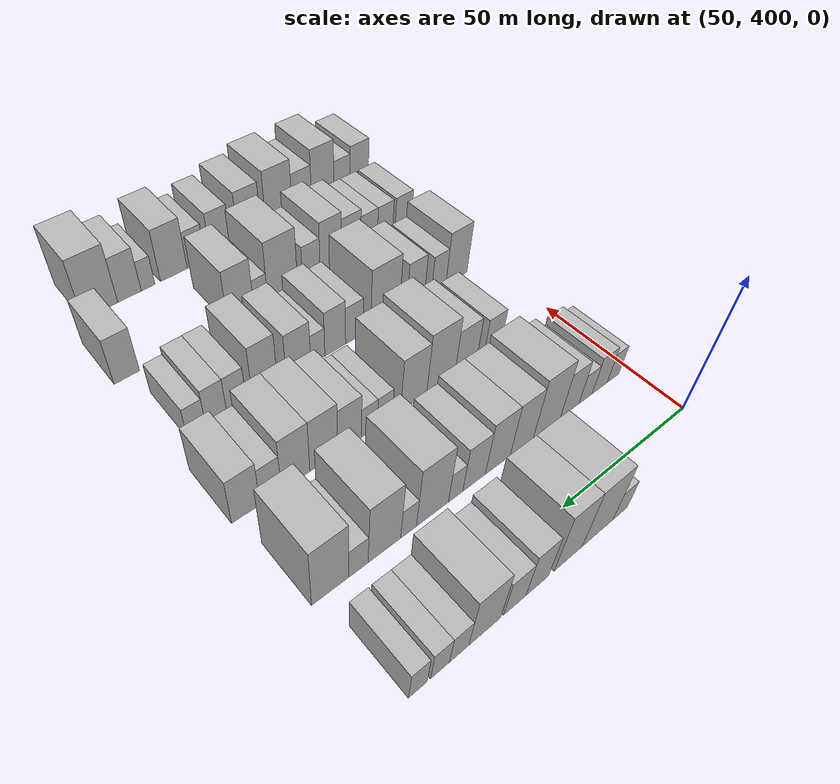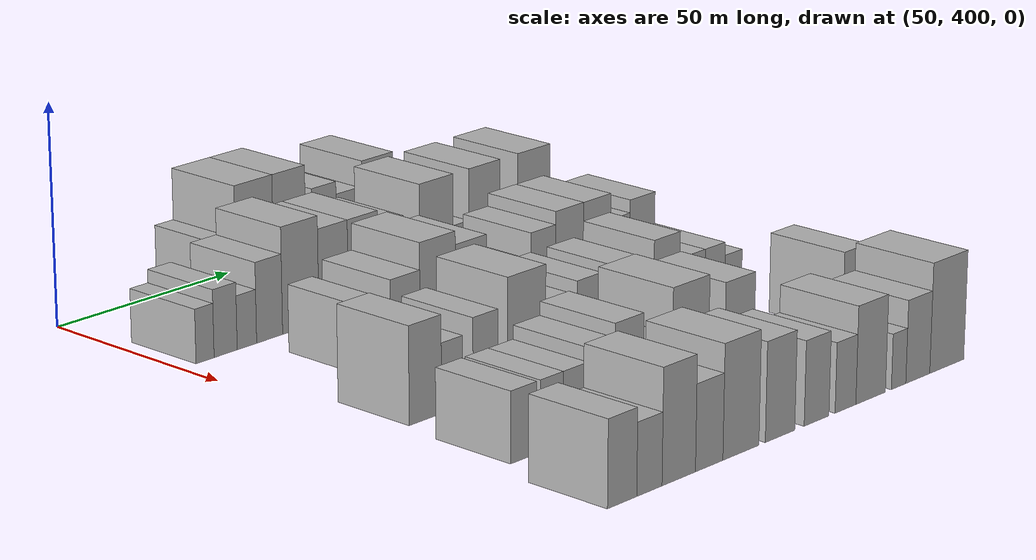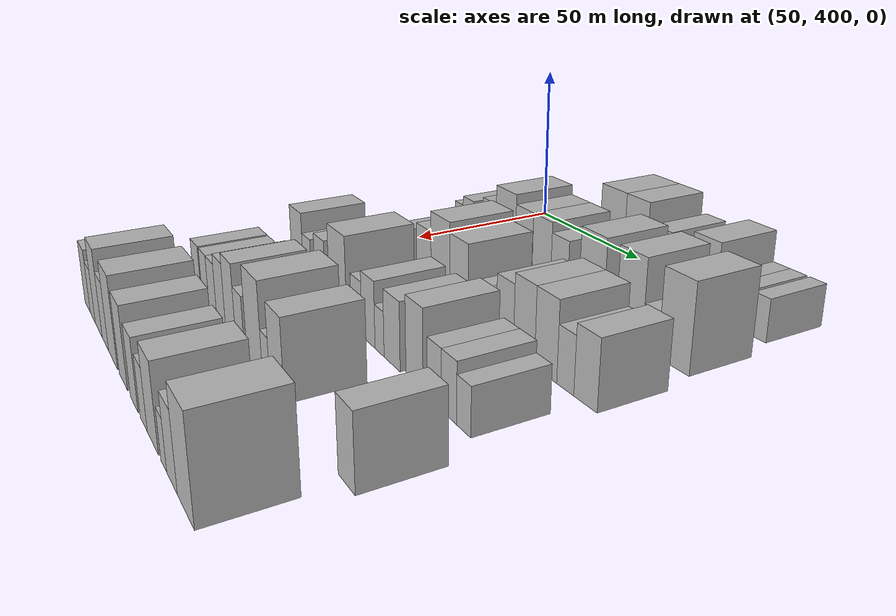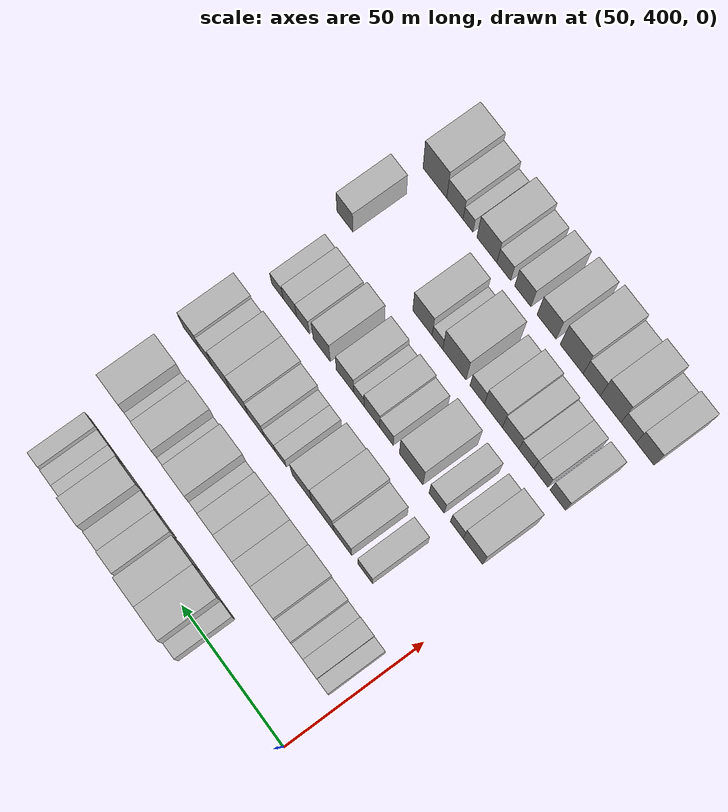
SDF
<sdf version="1.6">
 <world name="default">
  <model name="building_106">
   <static>1</static>
   <pose>50.0000 440.3252 0 0.000000 0.000000 0.000000</pose>
   <link name="link">
    <pose>0 0 6.00 0 0 0</pose>
    <collision name="collision"><geometry><box><size>20.0000 5.5348 12.0000</size></box></geometry></collision>
    <visual name="visual">
     <cast_shadows>0</cast_shadows>
     <geometry><box><size>20.0000 5.5348 12.0000</size></box></geometry>
     <material>
      <script>
       <uri>model://HANNAS_wall/materials/scripts</uri>
       <uri>model://HANNAS_wall/materials/textures</uri>
       <name>vrc/HANNAS_wall</name>
      </script>
     </material>
    </visual>
   </link>
  </model>
  <model name="building_107">
   <static>1</static>
   <pose>50.0000 448.8500 0 0.000000 0.000000 0.000000</pose>
   <link name="link">
    <pose>0 0 12.00 0 0 0</pose>
    <collision name="collision"><geometry><box><size>20.0000 11.5148 24.0000</size></box></geometry></collision>
    <visual name="visual">
     <cast_shadows>0</cast_shadows>
     <geometry><box><size>20.0000 11.5148 24.0000</size></box></geometry>
     <material>
      <script>
       <uri>model://HANNAS_wall/materials/scripts</uri>
       <uri>model://HANNAS_wall/materials/textures</uri>
       <name>vrc/HANNAS_wall</name>
      </script>
     </material>
    </visual>
   </link>
  </model>
  <model name="building_108">
   <static>1</static>
   <pose>50.0000 459.6433 0 0.000000 0.000000 0.000000</pose>
   <link name="link">
    <pose>0 0 12.00 0 0 0</pose>
    <collision name="collision"><geometry><box><size>20.0000 10.0718 24.0000</size></box></geometry></collision>
    <visual name="visual">
     <cast_shadows>0</cast_shadows>
     <geometry><box><size>20.0000 10.0718 24.0000</size></box></geometry>
     <material>
      <script>
       <uri>model://HANNAS_wall/materials/scripts</uri>
       <uri>model://HANNAS_wall/materials/textures</uri>
       <name>vrc/HANNAS_wall</name>
      </script>
     </material>
    </visual>
   </link>
  </model>
  <model name="building_109">
   <static>1</static>
   <pose>50.0000 470.5440 0 0.000000 0.000000 0.000000</pose>
   <link name="link">
    <pose>0 0 9.00 0 0 0</pose>
    <collision name="collision"><geometry><box><size>20.0000 7.7297 18.0000</size></box></geometry></collision>
    <visual name="visual">
     <cast_shadows>0</cast_shadows>
     <geometry><box><size>20.0000 7.7297 18.0000</size></box></geometry>
     <material>
      <script>
       <uri>model://HANNAS_wall/materials/scripts</uri>
       <uri>model://HANNAS_wall/materials/textures</uri>
       <name>vrc/HANNAS_wall</name>
      </script>
     </material>
    </visual>
   </link>
  </model>
  <model name="building_110">
   <static>1</static>
   <pose>50.0000 478.0715 0 0.000000 0.000000 0.000000</pose>
   <link name="link">
    <pose>0 0 7.50 0 0 0</pose>
    <collision name="collision"><geometry><box><size>20.0000 7.3253 15.0000</size></box></geometry></collision>
    <visual name="visual">
     <cast_shadows>0</cast_shadows>
     <geometry><box><size>20.0000 7.3253 15.0000</size></box></geometry>
     <material>
      <script>
       <uri>model://HANNAS_wall/materials/scripts</uri>
       <uri>model://HANNAS_wall/materials/textures</uri>
       <name>vrc/HANNAS_wall</name>
      </script>
     </material>
    </visual>
   </link>
  </model>
  <model name="building_111">
   <static>1</static>
   <pose>50.0000 487.7563 0 0.000000 0.000000 0.000000</pose>
   <link name="link">
    <pose>0 0 10.50 0 0 0</pose>
    <collision name="collision"><geometry><box><size>20.0000 10.0445 21.0000</size></box></geometry></collision>
    <visual name="visual">
     <cast_shadows>0</cast_shadows>
     <geometry><box><size>20.0000 10.0445 21.0000</size></box></geometry>
     <material>
      <script>
       <uri>model://HANNAS_wall/materials/scripts</uri>
       <uri>model://HANNAS_wall/materials/textures</uri>
       <name>vrc/HANNAS_wall</name>
      </script>
     </material>
    </visual>
   </link>
  </model>
  <model name="building_112">
   <static>1</static>
   <pose>50.0000 495.7075 0 0.000000 0.000000 0.000000</pose>
   <link name="link">
    <pose>0 0 6.00 0 0 0</pose>
    <collision name="collision"><geometry><box><size>20.0000 5.8578 12.0000</size></box></geometry></collision>
    <visual name="visual">
     <cast_shadows>0</cast_shadows>
     <geometry><box><size>20.0000 5.8578 12.0000</size></box></geometry>
     <material>
      <script>
       <uri>model://HANNAS_wall/materials/scripts</uri>
       <uri>model://HANNAS_wall/materials/textures</uri>
       <name>vrc/HANNAS_wall</name>
      </script>
     </material>
    </visual>
   </link>
  </model>
  <model name="building_113">
   <static>1</static>
   <pose>50.0000 501.4129 0 0.000000 0.000000 0.000000</pose>
   <link name="link">
    <pose>0 0 6.00 0 0 0</pose>
    <collision name="collision"><geometry><box><size>20.0000 5.5530 12.0000</size></box></geometry></collision>
    <visual name="visual">
     <cast_shadows>0</cast_shadows>
     <geometry><box><size>20.0000 5.5530 12.0000</size></box></geometry>
     <material>
      <script>
       <uri>model://HANNAS_wall/materials/scripts</uri>
       <uri>model://HANNAS_wall/materials/textures</uri>
       <name>vrc/HANNAS_wall</name>
      </script>
     </material>
    </visual>
   </link>
  </model>
  <model name="building_114">
   <static>1</static>
   <pose>50.0000 507.8551 0 0.000000 0.000000 0.000000</pose>
   <link name="link">
    <pose>0 0 6.00 0 0 0</pose>
    <collision name="collision"><geometry><box><size>20.0000 5.3314 12.0000</size></box></geometry></collision>
    <visual name="visual">
     <cast_shadows>0</cast_shadows>
     <geometry><box><size>20.0000 5.3314 12.0000</size></box></geometry>
     <material>
      <script>
       <uri>model://HANNAS_wall/materials/scripts</uri>
       <uri>model://HANNAS_wall/materials/textures</uri>
       <name>vrc/HANNAS_wall</name>
      </script>
     </material>
    </visual>
   </link>
  </model>
  <model name="building_211">
   <static>1</static>
   <pose>79.0000 406.6724 0 0.000000 0.000000 0.000000</pose>
   <link name="link">
    <pose>0 0 6.00 0 0 0</pose>
    <collision name="collision"><geometry><box><size>20.0000 5.1438 12.0000</size></box></geometry></collision>
    <visual name="visual">
     <cast_shadows>0</cast_shadows>
     <geometry><box><size>20.0000 5.1438 12.0000</size></box></geometry>
     <material>
      <script>
       <uri>model://HANNAS_wall/materials/scripts</uri>
       <uri>model://HANNAS_wall/materials/textures</uri>
       <name>vrc/HANNAS_wall</name>
      </script>
     </material>
    </visual>
   </link>
  </model>
  <model name="building_212">
   <static>1</static>
   <pose>79.0000 412.5616 0 0.000000 0.000000 0.000000</pose>
   <link name="link">
    <pose>0 0 7.50 0 0 0</pose>
    <collision name="collision"><geometry><box><size>20.0000 6.6344 15.0000</size></box></geometry></collision>
    <visual name="visual">
     <cast_shadows>0</cast_shadows>
     <geometry><box><size>20.0000 6.6344 15.0000</size></box></geometry>
     <material>
      <script>
       <uri>model://HANNAS_wall/materials/scripts</uri>
       <uri>model://HANNAS_wall/materials/textures</uri>
       <name>vrc/HANNAS_wall</name>
      </script>
     </material>
    </visual>
   </link>
  </model>
  <model name="building_213">
   <static>1</static>
   <pose>79.0000 418.7056 0 0.000000 0.000000 0.000000</pose>
   <link name="link">
    <pose>0 0 6.00 0 0 0</pose>
    <collision name="collision"><geometry><box><size>20.0000 5.6537 12.0000</size></box></geometry></collision>
    <visual name="visual">
     <cast_shadows>0</cast_shadows>
     <geometry><box><size>20.0000 5.6537 12.0000</size></box></geometry>
     <material>
      <script>
       <uri>model://HANNAS_wall/materials/scripts</uri>
       <uri>model://HANNAS_wall/materials/textures</uri>
       <name>vrc/HANNAS_wall</name>
      </script>
     </material>
    </visual>
   </link>
  </model>
  <model name="building_214">
   <static>1</static>
   <pose>79.0000 425.3550 0 0.000000 0.000000 0.000000</pose>
   <link name="link">
    <pose>0 0 9.00 0 0 0</pose>
    <collision name="collision"><geometry><box><size>20.0000 7.6452 18.0000</size></box></geometry></collision>
    <visual name="visual">
     <cast_shadows>0</cast_shadows>
     <geometry><box><size>20.0000 7.6452 18.0000</size></box></geometry>
     <material>
      <script>
       <uri>model://HANNAS_wall/materials/scripts</uri>
       <uri>model://HANNAS_wall/materials/textures</uri>
       <name>vrc/HANNAS_wall</name>
      </script>
     </material>
    </visual>
   </link>
  </model>
  <model name="building_215">
   <static>1</static>
   <pose>79.0000 434.6088 0 0.000000 0.000000 0.000000</pose>
   <link name="link">
    <pose>0 0 12.00 0 0 0</pose>
    <collision name="collision"><geometry><box><size>20.0000 10.8624 24.0000</size></box></geometry></collision>
    <visual name="visual">
     <cast_shadows>0</cast_shadows>
     <geometry><box><size>20.0000 10.8624 24.0000</size></box></geometry>
     <material>
      <script>
       <uri>model://HANNAS_wall/materials/scripts</uri>
       <uri>model://HANNAS_wall/materials/textures</uri>
       <name>vrc/HANNAS_wall</name>
      </script>
     </material>
    </visual>
   </link>
  </model>
  <model name="building_216">
   <static>1</static>
   <pose>79.0000 444.5128 0 0.000000 0.000000 0.000000</pose>
   <link name="link">
    <pose>0 0 10.50 0 0 0</pose>
    <collision name="collision"><geometry><box><size>20.0000 8.9455 21.0000</size></box></geometry></collision>
    <visual name="visual">
     <cast_shadows>0</cast_shadows>
     <geometry><box><size>20.0000 8.9455 21.0000</size></box></geometry>
     <material>
      <script>
       <uri>model://HANNAS_wall/materials/scripts</uri>
       <uri>model://HANNAS_wall/materials/textures</uri>
       <name>vrc/HANNAS_wall</name>
      </script>
     </material>
    </visual>
   </link>
  </model>
  <model name="building_217">
   <static>1</static>
   <pose>79.0000 453.6151 0 0.000000 0.000000 0.000000</pose>
   <link name="link">
    <pose>0 0 10.50 0 0 0</pose>
    <collision name="collision"><geometry><box><size>20.0000 9.2590 21.0000</size></box></geometry></collision>
    <visual name="visual">
     <cast_shadows>0</cast_shadows>
     <geometry><box><size>20.0000 9.2590 21.0000</size></box></geometry>
     <material>
      <script>
       <uri>model://HANNAS_wall/materials/scripts</uri>
       <uri>model://HANNAS_wall/materials/textures</uri>
       <name>vrc/HANNAS_wall</name>
      </script>
     </material>
    </visual>
   </link>
  </model>
  <model name="building_218">
   <static>1</static>
   <pose>79.0000 462.2756 0 0.000000 0.000000 0.000000</pose>
   <link name="link">
    <pose>0 0 9.00 0 0 0</pose>
    <collision name="collision"><geometry><box><size>20.0000 8.0622 18.0000</size></box></geometry></collision>
    <visual name="visual">
     <cast_shadows>0</cast_shadows>
     <geometry><box><size>20.0000 8.0622 18.0000</size></box></geometry>
     <material>
      <script>
       <uri>model://HANNAS_wall/materials/scripts</uri>
       <uri>model://HANNAS_wall/materials/textures</uri>
       <name>vrc/HANNAS_wall</name>
      </script>
     </material>
    </visual>
   </link>
  </model>
  <model name="building_219">
   <static>1</static>
   <pose>79.0000 468.8158 0 0.000000 0.000000 0.000000</pose>
   <link name="link">
    <pose>0 0 6.00 0 0 0</pose>
    <collision name="collision"><geometry><box><size>20.0000 5.0181 12.0000</size></box></geometry></collision>
    <visual name="visual">
     <cast_shadows>0</cast_shadows>
     <geometry><box><size>20.0000 5.0181 12.0000</size></box></geometry>
     <material>
      <script>
       <uri>model://HANNAS_wall/materials/scripts</uri>
       <uri>model://HANNAS_wall/materials/textures</uri>
       <name>vrc/HANNAS_wall</name>
      </script>
     </material>
    </visual>
   </link>
  </model>
  <model name="building_220">
   <static>1</static>
   <pose>79.0000 476.7236 0 0.000000 0.000000 0.000000</pose>
   <link name="link">
    <pose>0 0 12.00 0 0 0</pose>
    <collision name="collision"><geometry><box><size>20.0000 10.7975 24.0000</size></box></geometry></collision>
    <visual name="visual">
     <cast_shadows>0</cast_shadows>
     <geometry><box><size>20.0000 10.7975 24.0000</size></box></geometry>
     <material>
      <script>
       <uri>model://HANNAS_wall/materials/scripts</uri>
       <uri>model://HANNAS_wall/materials/textures</uri>
       <name>vrc/HANNAS_wall</name>
      </script>
     </material>
    </visual>
   </link>
  </model>
  <model name="building_221">
   <static>1</static>
   <pose>79.0000 484.6833 0 0.000000 0.000000 0.000000</pose>
   <link name="link">
    <pose>0 0 6.00 0 0 0</pose>
    <collision name="collision"><geometry><box><size>20.0000 5.1220 12.0000</size></box></geometry></collision>
    <visual name="visual">
     <cast_shadows>0</cast_shadows>
     <geometry><box><size>20.0000 5.1220 12.0000</size></box></geometry>
     <material>
      <script>
       <uri>model://HANNAS_wall/materials/scripts</uri>
       <uri>model://HANNAS_wall/materials/textures</uri>
       <name>vrc/HANNAS_wall</name>
      </script>
     </material>
    </visual>
   </link>
  </model>
  <model name="building_222">
   <static>1</static>
   <pose>79.0000 492.3899 0 0.000000 0.000000 0.000000</pose>
   <link name="link">
    <pose>0 0 12.00 0 0 0</pose>
    <collision name="collision"><geometry><box><size>20.0000 10.2912 24.0000</size></box></geometry></collision>
    <visual name="visual">
     <cast_shadows>0</cast_shadows>
     <geometry><box><size>20.0000 10.2912 24.0000</size></box></geometry>
     <material>
      <script>
       <uri>model://HANNAS_wall/materials/scripts</uri>
       <uri>model://HANNAS_wall/materials/textures</uri>
       <name>vrc/HANNAS_wall</name>
      </script>
     </material>
    </visual>
   </link>
  </model>
  <model name="building_223">
   <static>1</static>
   <pose>79.0000 500.4923 0 0.000000 0.000000 0.000000</pose>
   <link name="link">
    <pose>0 0 6.00 0 0 0</pose>
    <collision name="collision"><geometry><box><size>20.0000 5.9134 12.0000</size></box></geometry></collision>
    <visual name="visual">
     <cast_shadows>0</cast_shadows>
     <geometry><box><size>20.0000 5.9134 12.0000</size></box></geometry>
     <material>
      <script>
       <uri>model://HANNAS_wall/materials/scripts</uri>
       <uri>model://HANNAS_wall/materials/textures</uri>
       <name>vrc/HANNAS_wall</name>
      </script>
     </material>
    </visual>
   </link>
  </model>
  <model name="building_224">
   <static>1</static>
   <pose>79.0000 508.8662 0 0.000000 0.000000 0.000000</pose>
   <link name="link">
    <pose>0 0 12.00 0 0 0</pose>
    <collision name="collision"><geometry><box><size>20.0000 10.8345 24.0000</size></box></geometry></collision>
    <visual name="visual">
     <cast_shadows>0</cast_shadows>
     <geometry><box><size>20.0000 10.8345 24.0000</size></box></geometry>
     <material>
      <script>
       <uri>model://HANNAS_wall/materials/scripts</uri>
       <uri>model://HANNAS_wall/materials/textures</uri>
       <name>vrc/HANNAS_wall</name>
      </script>
     </material>
    </visual>
   </link>
  </model>
  <model name="building_329">
   <static>1</static>
   <pose>108.0000 425.8701 0 0.000000 0.000000 0.000000</pose>
   <link name="link">
    <pose>0 0 7.50 0 0 0</pose>
    <collision name="collision"><geometry><box><size>20.0000 7.1567 15.0000</size></box></geometry></collision>
    <visual name="visual">
     <cast_shadows>0</cast_shadows>
     <geometry><box><size>20.0000 7.1567 15.0000</size></box></geometry>
     <material>
      <script>
       <uri>model://HANNAS_wall/materials/scripts</uri>
       <uri>model://HANNAS_wall/materials/textures</uri>
       <name>vrc/HANNAS_wall</name>
      </script>
     </material>
    </visual>
   </link>
  </model>
  <model name="building_330">
   <static>1</static>
   <pose>108.0000 436.8398 0 0.000000 0.000000 0.000000</pose>
   <link name="link">
    <pose>0 0 9.00 0 0 0</pose>
    <collision name="collision"><geometry><box><size>20.0000 8.7826 18.0000</size></box></geometry></collision>
    <visual name="visual">
     <cast_shadows>0</cast_shadows>
     <geometry><box><size>20.0000 8.7826 18.0000</size></box></geometry>
     <material>
      <script>
       <uri>model://HANNAS_wall/materials/scripts</uri>
       <uri>model://HANNAS_wall/materials/textures</uri>
       <name>vrc/HANNAS_wall</name>
      </script>
     </material>
    </visual>
   </link>
  </model>
  <model name="building_331">
   <static>1</static>
   <pose>108.0000 446.6506 0 0.000000 0.000000 0.000000</pose>
   <link name="link">
    <pose>0 0 12.00 0 0 0</pose>
    <collision name="collision"><geometry><box><size>20.0000 10.8390 24.0000</size></box></geometry></collision>
    <visual name="visual">
     <cast_shadows>0</cast_shadows>
     <geometry><box><size>20.0000 10.8390 24.0000</size></box></geometry>
     <material>
      <script>
       <uri>model://HANNAS_wall/materials/scripts</uri>
       <uri>model://HANNAS_wall/materials/textures</uri>
       <name>vrc/HANNAS_wall</name>
      </script>
     </material>
    </visual>
   </link>
  </model>
  <model name="building_332">
   <static>1</static>
   <pose>108.0000 456.9176 0 0.000000 0.000000 0.000000</pose>
   <link name="link">
    <pose>0 0 10.50 0 0 0</pose>
    <collision name="collision"><geometry><box><size>20.0000 9.6951 21.0000</size></box></geometry></collision>
    <visual name="visual">
     <cast_shadows>0</cast_shadows>
     <geometry><box><size>20.0000 9.6951 21.0000</size></box></geometry>
     <material>
      <script>
       <uri>model://HANNAS_wall/materials/scripts</uri>
       <uri>model://HANNAS_wall/materials/textures</uri>
       <name>vrc/HANNAS_wall</name>
      </script>
     </material>
    </visual>
   </link>
  </model>
  <model name="building_333">
   <static>1</static>
   <pose>108.0000 467.4986 0 0.000000 0.000000 0.000000</pose>
   <link name="link">
    <pose>0 0 6.00 0 0 0</pose>
    <collision name="collision"><geometry><box><size>20.0000 5.4667 12.0000</size></box></geometry></collision>
    <visual name="visual">
     <cast_shadows>0</cast_shadows>
     <geometry><box><size>20.0000 5.4667 12.0000</size></box></geometry>
     <material>
      <script>
       <uri>model://HANNAS_wall/materials/scripts</uri>
       <uri>model://HANNAS_wall/materials/textures</uri>
       <name>vrc/HANNAS_wall</name>
      </script>
     </material>
    </visual>
   </link>
  </model>
  <model name="building_334">
   <static>1</static>
   <pose>108.0000 473.0381 0 0.000000 0.000000 0.000000</pose>
   <link name="link">
    <pose>0 0 6.00 0 0 0</pose>
    <collision name="collision"><geometry><box><size>20.0000 5.6122 12.0000</size></box></geometry></collision>
    <visual name="visual">
     <cast_shadows>0</cast_shadows>
     <geometry><box><size>20.0000 5.6122 12.0000</size></box></geometry>
     <material>
      <script>
       <uri>model://HANNAS_wall/materials/scripts</uri>
       <uri>model://HANNAS_wall/materials/textures</uri>
       <name>vrc/HANNAS_wall</name>
      </script>
     </material>
    </visual>
   </link>
  </model>
  <model name="building_335">
   <static>1</static>
   <pose>108.0000 479.8450 0 0.000000 0.000000 0.000000</pose>
   <link name="link">
    <pose>0 0 9.00 0 0 0</pose>
    <collision name="collision"><geometry><box><size>20.0000 8.0017 18.0000</size></box></geometry></collision>
    <visual name="visual">
     <cast_shadows>0</cast_shadows>
     <geometry><box><size>20.0000 8.0017 18.0000</size></box></geometry>
     <material>
      <script>
       <uri>model://HANNAS_wall/materials/scripts</uri>
       <uri>model://HANNAS_wall/materials/textures</uri>
       <name>vrc/HANNAS_wall</name>
      </script>
     </material>
    </visual>
   </link>
  </model>
  <model name="building_336">
   <static>1</static>
   <pose>108.0000 488.4275 0 0.000000 0.000000 0.000000</pose>
   <link name="link">
    <pose>0 0 10.50 0 0 0</pose>
    <collision name="collision"><geometry><box><size>20.0000 9.1633 21.0000</size></box></geometry></collision>
    <visual name="visual">
     <cast_shadows>0</cast_shadows>
     <geometry><box><size>20.0000 9.1633 21.0000</size></box></geometry>
     <material>
      <script>
       <uri>model://HANNAS_wall/materials/scripts</uri>
       <uri>model://HANNAS_wall/materials/textures</uri>
       <name>vrc/HANNAS_wall</name>
      </script>
     </material>
    </visual>
   </link>
  </model>
  <model name="building_337">
   <static>1</static>
   <pose>108.0000 497.5216 0 0.000000 0.000000 0.000000</pose>
   <link name="link">
    <pose>0 0 10.50 0 0 0</pose>
    <collision name="collision"><geometry><box><size>20.0000 9.0248 21.0000</size></box></geometry></collision>
    <visual name="visual">
     <cast_shadows>0</cast_shadows>
     <geometry><box><size>20.0000 9.0248 21.0000</size></box></geometry>
     <material>
      <script>
       <uri>model://HANNAS_wall/materials/scripts</uri>
       <uri>model://HANNAS_wall/materials/textures</uri>
       <name>vrc/HANNAS_wall</name>
      </script>
     </material>
    </visual>
   </link>
  </model>
  <model name="building_338">
   <static>1</static>
   <pose>108.0000 505.3039 0 0.000000 0.000000 0.000000</pose>
   <link name="link">
    <pose>0 0 7.50 0 0 0</pose>
    <collision name="collision"><geometry><box><size>20.0000 6.5399 15.0000</size></box></geometry></collision>
    <visual name="visual">
     <cast_shadows>0</cast_shadows>
     <geometry><box><size>20.0000 6.5399 15.0000</size></box></geometry>
     <material>
      <script>
       <uri>model://HANNAS_wall/materials/scripts</uri>
       <uri>model://HANNAS_wall/materials/textures</uri>
       <name>vrc/HANNAS_wall</name>
      </script>
     </material>
    </visual>
   </link>
  </model>
  <model name="building_339">
   <static>1</static>
   <pose>108.0000 512.8173 0 0.000000 0.000000 0.000000</pose>
   <link name="link">
    <pose>0 0 9.00 0 0 0</pose>
    <collision name="collision"><geometry><box><size>20.0000 8.4868 18.0000</size></box></geometry></collision>
    <visual name="visual">
     <cast_shadows>0</cast_shadows>
     <geometry><box><size>20.0000 8.4868 18.0000</size></box></geometry>
     <material>
      <script>
       <uri>model://HANNAS_wall/materials/scripts</uri>
       <uri>model://HANNAS_wall/materials/textures</uri>
       <name>vrc/HANNAS_wall</name>
      </script>
     </material>
    </visual>
   </link>
  </model>
  <model name="building_442">
   <static>1</static>
   <pose>137.0000 412.5299 0 0.000000 0.000000 0.000000</pose>
   <link name="link">
    <pose>0 0 10.50 0 0 0</pose>
    <collision name="collision"><geometry><box><size>20.0000 9.3238 21.0000</size></box></geometry></collision>
    <visual name="visual">
     <cast_shadows>0</cast_shadows>
     <geometry><box><size>20.0000 9.3238 21.0000</size></box></geometry>
     <material>
      <script>
       <uri>model://HANNAS_wall/materials/scripts</uri>
       <uri>model://HANNAS_wall/materials/textures</uri>
       <name>vrc/HANNAS_wall</name>
      </script>
     </material>
    </visual>
   </link>
  </model>
  <model name="building_443">
   <static>1</static>
   <pose>137.0000 420.3171 0 0.000000 0.000000 0.000000</pose>
   <link name="link">
    <pose>0 0 7.50 0 0 0</pose>
    <collision name="collision"><geometry><box><size>20.0000 6.2507 15.0000</size></box></geometry></collision>
    <visual name="visual">
     <cast_shadows>0</cast_shadows>
     <geometry><box><size>20.0000 6.2507 15.0000</size></box></geometry>
     <material>
      <script>
       <uri>model://HANNAS_wall/materials/scripts</uri>
       <uri>model://HANNAS_wall/materials/textures</uri>
       <name>vrc/HANNAS_wall</name>
      </script>
     </material>
    </visual>
   </link>
  </model>
  <model name="building_444">
   <static>1</static>
   <pose>137.0000 430.1366 0 0.000000 0.000000 0.000000</pose>
   <link name="link">
    <pose>0 0 9.00 0 0 0</pose>
    <collision name="collision"><geometry><box><size>20.0000 7.3885 18.0000</size></box></geometry></collision>
    <visual name="visual">
     <cast_shadows>0</cast_shadows>
     <geometry><box><size>20.0000 7.3885 18.0000</size></box></geometry>
     <material>
      <script>
       <uri>model://HANNAS_wall/materials/scripts</uri>
       <uri>model://HANNAS_wall/materials/textures</uri>
       <name>vrc/HANNAS_wall</name>
      </script>
     </material>
    </visual>
   </link>
  </model>
  <model name="building_445">
   <static>1</static>
   <pose>137.0000 442.5979 0 0.000000 0.000000 0.000000</pose>
   <link name="link">
    <pose>0 0 12.00 0 0 0</pose>
    <collision name="collision"><geometry><box><size>20.0000 11.5340 24.0000</size></box></geometry></collision>
    <visual name="visual">
     <cast_shadows>0</cast_shadows>
     <geometry><box><size>20.0000 11.5340 24.0000</size></box></geometry>
     <material>
      <script>
       <uri>model://HANNAS_wall/materials/scripts</uri>
       <uri>model://HANNAS_wall/materials/textures</uri>
       <name>vrc/HANNAS_wall</name>
      </script>
     </material>
    </visual>
   </link>
  </model>
  <model name="building_446">
   <static>1</static>
   <pose>137.0000 454.6991 0 0.000000 0.000000 0.000000</pose>
   <link name="link">
    <pose>0 0 7.50 0 0 0</pose>
    <collision name="collision"><geometry><box><size>20.0000 6.6684 15.0000</size></box></geometry></collision>
    <visual name="visual">
     <cast_shadows>0</cast_shadows>
     <geometry><box><size>20.0000 6.6684 15.0000</size></box></geometry>
     <material>
      <script>
       <uri>model://HANNAS_wall/materials/scripts</uri>
       <uri>model://HANNAS_wall/materials/textures</uri>
       <name>vrc/HANNAS_wall</name>
      </script>
     </material>
    </visual>
   </link>
  </model>
  <model name="building_447">
   <static>1</static>
   <pose>137.0000 461.9155 0 0.000000 0.000000 0.000000</pose>
   <link name="link">
    <pose>0 0 9.00 0 0 0</pose>
    <collision name="collision"><geometry><box><size>20.0000 7.7644 18.0000</size></box></geometry></collision>
    <visual name="visual">
     <cast_shadows>0</cast_shadows>
     <geometry><box><size>20.0000 7.7644 18.0000</size></box></geometry>
     <material>
      <script>
       <uri>model://HANNAS_wall/materials/scripts</uri>
       <uri>model://HANNAS_wall/materials/textures</uri>
       <name>vrc/HANNAS_wall</name>
      </script>
     </material>
    </visual>
   </link>
  </model>
  <model name="building_448">
   <static>1</static>
   <pose>137.0000 468.3696 0 0.000000 0.000000 0.000000</pose>
   <link name="link">
    <pose>0 0 6.00 0 0 0</pose>
    <collision name="collision"><geometry><box><size>20.0000 5.1439 12.0000</size></box></geometry></collision>
    <visual name="visual">
     <cast_shadows>0</cast_shadows>
     <geometry><box><size>20.0000 5.1439 12.0000</size></box></geometry>
     <material>
      <script>
       <uri>model://HANNAS_wall/materials/scripts</uri>
       <uri>model://HANNAS_wall/materials/textures</uri>
       <name>vrc/HANNAS_wall</name>
      </script>
     </material>
    </visual>
   </link>
  </model>
  <model name="building_449">
   <static>1</static>
   <pose>137.0000 475.2976 0 0.000000 0.000000 0.000000</pose>
   <link name="link">
    <pose>0 0 9.00 0 0 0</pose>
    <collision name="collision"><geometry><box><size>20.0000 8.7121 18.0000</size></box></geometry></collision>
    <visual name="visual">
     <cast_shadows>0</cast_shadows>
     <geometry><box><size>20.0000 8.7121 18.0000</size></box></geometry>
     <material>
      <script>
       <uri>model://HANNAS_wall/materials/scripts</uri>
       <uri>model://HANNAS_wall/materials/textures</uri>
       <name>vrc/HANNAS_wall</name>
      </script>
     </material>
    </visual>
   </link>
  </model>
  <model name="building_450">
   <static>1</static>
   <pose>137.0000 486.9226 0 0.000000 0.000000 0.000000</pose>
   <link name="link">
    <pose>0 0 10.50 0 0 0</pose>
    <collision name="collision"><geometry><box><size>20.0000 8.5380 21.0000</size></box></geometry></collision>
    <visual name="visual">
     <cast_shadows>0</cast_shadows>
     <geometry><box><size>20.0000 8.5380 21.0000</size></box></geometry>
     <material>
      <script>
       <uri>model://HANNAS_wall/materials/scripts</uri>
       <uri>model://HANNAS_wall/materials/textures</uri>
       <name>vrc/HANNAS_wall</name>
      </script>
     </material>
    </visual>
   </link>
  </model>
  <model name="building_451">
   <static>1</static>
   <pose>137.0000 496.4198 0 0.000000 0.000000 0.000000</pose>
   <link name="link">
    <pose>0 0 7.50 0 0 0</pose>
    <collision name="collision"><geometry><box><size>20.0000 6.4563 15.0000</size></box></geometry></collision>
    <visual name="visual">
     <cast_shadows>0</cast_shadows>
     <geometry><box><size>20.0000 6.4563 15.0000</size></box></geometry>
     <material>
      <script>
       <uri>model://HANNAS_wall/materials/scripts</uri>
       <uri>model://HANNAS_wall/materials/textures</uri>
       <name>vrc/HANNAS_wall</name>
      </script>
     </material>
    </visual>
   </link>
  </model>
  <model name="building_452">
   <static>1</static>
   <pose>137.0000 503.0288 0 0.000000 0.000000 0.000000</pose>
   <link name="link">
    <pose>0 0 7.50 0 0 0</pose>
    <collision name="collision"><geometry><box><size>20.0000 6.7618 15.0000</size></box></geometry></collision>
    <visual name="visual">
     <cast_shadows>0</cast_shadows>
     <geometry><box><size>20.0000 6.7618 15.0000</size></box></geometry>
     <material>
      <script>
       <uri>model://HANNAS_wall/materials/scripts</uri>
       <uri>model://HANNAS_wall/materials/textures</uri>
       <name>vrc/HANNAS_wall</name>
      </script>
     </material>
    </visual>
   </link>
  </model>
  <model name="building_453">
   <static>1</static>
   <pose>137.0000 509.3555 0 0.000000 0.000000 0.000000</pose>
   <link name="link">
    <pose>0 0 6.00 0 0 0</pose>
    <collision name="collision"><geometry><box><size>20.0000 5.8917 12.0000</size></box></geometry></collision>
    <visual name="visual">
     <cast_shadows>0</cast_shadows>
     <geometry><box><size>20.0000 5.8917 12.0000</size></box></geometry>
     <material>
      <script>
       <uri>model://HANNAS_wall/materials/scripts</uri>
       <uri>model://HANNAS_wall/materials/textures</uri>
       <name>vrc/HANNAS_wall</name>
      </script>
     </material>
    </visual>
   </link>
  </model>
  <model name="building_557">
   <static>1</static>
   <pose>166.0000 409.7953 0 0.000000 0.000000 0.000000</pose>
   <link name="link">
    <pose>0 0 7.50 0 0 0</pose>
    <collision name="collision"><geometry><box><size>20.0000 7.4570 15.0000</size></box></geometry></collision>
    <visual name="visual">
     <cast_shadows>0</cast_shadows>
     <geometry><box><size>20.0000 7.4570 15.0000</size></box></geometry>
     <material>
      <script>
       <uri>model://HANNAS_wall/materials/scripts</uri>
       <uri>model://HANNAS_wall/materials/textures</uri>
       <name>vrc/HANNAS_wall</name>
      </script>
     </material>
    </visual>
   </link>
  </model>
  <model name="building_558">
   <static>1</static>
   <pose>166.0000 417.9048 0 0.000000 0.000000 0.000000</pose>
   <link name="link">
    <pose>0 0 7.50 0 0 0</pose>
    <collision name="collision"><geometry><box><size>20.0000 6.7619 15.0000</size></box></geometry></collision>
    <visual name="visual">
     <cast_shadows>0</cast_shadows>
     <geometry><box><size>20.0000 6.7619 15.0000</size></box></geometry>
     <material>
      <script>
       <uri>model://HANNAS_wall/materials/scripts</uri>
       <uri>model://HANNAS_wall/materials/textures</uri>
       <name>vrc/HANNAS_wall</name>
      </script>
     </material>
    </visual>
   </link>
  </model>
  <model name="building_559">
   <static>1</static>
   <pose>166.0000 424.9095 0 0.000000 0.000000 0.000000</pose>
   <link name="link">
    <pose>0 0 7.50 0 0 0</pose>
    <collision name="collision"><geometry><box><size>20.0000 7.2476 15.0000</size></box></geometry></collision>
    <visual name="visual">
     <cast_shadows>0</cast_shadows>
     <geometry><box><size>20.0000 7.2476 15.0000</size></box></geometry>
     <material>
      <script>
       <uri>model://HANNAS_wall/materials/scripts</uri>
       <uri>model://HANNAS_wall/materials/textures</uri>
       <name>vrc/HANNAS_wall</name>
      </script>
     </material>
    </visual>
   </link>
  </model>
  <model name="building_560">
   <static>1</static>
   <pose>166.0000 432.5602 0 0.000000 0.000000 0.000000</pose>
   <link name="link">
    <pose>0 0 9.00 0 0 0</pose>
    <collision name="collision"><geometry><box><size>20.0000 8.0537 18.0000</size></box></geometry></collision>
    <visual name="visual">
     <cast_shadows>0</cast_shadows>
     <geometry><box><size>20.0000 8.0537 18.0000</size></box></geometry>
     <material>
      <script>
       <uri>model://HANNAS_wall/materials/scripts</uri>
       <uri>model://HANNAS_wall/materials/textures</uri>
       <name>vrc/HANNAS_wall</name>
      </script>
     </material>
    </visual>
   </link>
  </model>
  <model name="building_561">
   <static>1</static>
   <pose>166.0000 440.9644 0 0.000000 0.000000 0.000000</pose>
   <link name="link">
    <pose>0 0 10.50 0 0 0</pose>
    <collision name="collision"><geometry><box><size>20.0000 8.7547 21.0000</size></box></geometry></collision>
    <visual name="visual">
     <cast_shadows>0</cast_shadows>
     <geometry><box><size>20.0000 8.7547 21.0000</size></box></geometry>
     <material>
      <script>
       <uri>model://HANNAS_wall/materials/scripts</uri>
       <uri>model://HANNAS_wall/materials/textures</uri>
       <name>vrc/HANNAS_wall</name>
      </script>
     </material>
    </visual>
   </link>
  </model>
  <model name="building_562">
   <static>1</static>
   <pose>166.0000 448.8509 0 0.000000 0.000000 0.000000</pose>
   <link name="link">
    <pose>0 0 7.50 0 0 0</pose>
    <collision name="collision"><geometry><box><size>20.0000 7.0183 15.0000</size></box></geometry></collision>
    <visual name="visual">
     <cast_shadows>0</cast_shadows>
     <geometry><box><size>20.0000 7.0183 15.0000</size></box></geometry>
     <material>
      <script>
       <uri>model://HANNAS_wall/materials/scripts</uri>
       <uri>model://HANNAS_wall/materials/textures</uri>
       <name>vrc/HANNAS_wall</name>
      </script>
     </material>
    </visual>
   </link>
  </model>
  <model name="building_563">
   <static>1</static>
   <pose>166.0000 460.1050 0 0.000000 0.000000 0.000000</pose>
   <link name="link">
    <pose>0 0 12.00 0 0 0</pose>
    <collision name="collision"><geometry><box><size>20.0000 11.4899 24.0000</size></box></geometry></collision>
    <visual name="visual">
     <cast_shadows>0</cast_shadows>
     <geometry><box><size>20.0000 11.4899 24.0000</size></box></geometry>
     <material>
      <script>
       <uri>model://HANNAS_wall/materials/scripts</uri>
       <uri>model://HANNAS_wall/materials/textures</uri>
       <name>vrc/HANNAS_wall</name>
      </script>
     </material>
    </visual>
   </link>
  </model>
  <model name="building_564">
   <static>1</static>
   <pose>166.0000 468.4604 0 0.000000 0.000000 0.000000</pose>
   <link name="link">
    <pose>0 0 6.00 0 0 0</pose>
    <collision name="collision"><geometry><box><size>20.0000 5.2209 12.0000</size></box></geometry></collision>
    <visual name="visual">
     <cast_shadows>0</cast_shadows>
     <geometry><box><size>20.0000 5.2209 12.0000</size></box></geometry>
     <material>
      <script>
       <uri>model://HANNAS_wall/materials/scripts</uri>
       <uri>model://HANNAS_wall/materials/textures</uri>
       <name>vrc/HANNAS_wall</name>
      </script>
     </material>
    </visual>
   </link>
  </model>
  <model name="building_565">
   <static>1</static>
   <pose>166.0000 475.8788 0 0.000000 0.000000 0.000000</pose>
   <link name="link">
    <pose>0 0 10.50 0 0 0</pose>
    <collision name="collision"><geometry><box><size>20.0000 9.6160 21.0000</size></box></geometry></collision>
    <visual name="visual">
     <cast_shadows>0</cast_shadows>
     <geometry><box><size>20.0000 9.6160 21.0000</size></box></geometry>
     <material>
      <script>
       <uri>model://HANNAS_wall/materials/scripts</uri>
       <uri>model://HANNAS_wall/materials/textures</uri>
       <name>vrc/HANNAS_wall</name>
      </script>
     </material>
    </visual>
   </link>
  </model>
  <model name="building_566">
   <static>1</static>
   <pose>166.0000 514.8308 0 0.000000 0.000000 0.000000</pose>
   <link name="link">
    <pose>0 0 9.00 0 0 0</pose>
    <collision name="collision"><geometry><box><size>20.0000 8.0960 18.0000</size></box></geometry></collision>
    <visual name="visual">
     <cast_shadows>0</cast_shadows>
     <geometry><box><size>20.0000 8.0960 18.0000</size></box></geometry>
     <material>
      <script>
       <uri>model://HANNAS_wall/materials/scripts</uri>
       <uri>model://HANNAS_wall/materials/textures</uri>
       <name>vrc/HANNAS_wall</name>
      </script>
     </material>
    </visual>
   </link>
  </model>
  <model name="building_670">
   <static>1</static>
   <pose>195.0000 405.4235 0 0.000000 0.000000 0.000000</pose>
   <link name="link">
    <pose>0 0 9.00 0 0 0</pose>
    <collision name="collision"><geometry><box><size>20.0000 8.4274 18.0000</size></box></geometry></collision>
    <visual name="visual">
     <cast_shadows>0</cast_shadows>
     <geometry><box><size>20.0000 8.4274 18.0000</size></box></geometry>
     <material>
      <script>
       <uri>model://HANNAS_wall/materials/scripts</uri>
       <uri>model://HANNAS_wall/materials/textures</uri>
       <name>vrc/HANNAS_wall</name>
      </script>
     </material>
    </visual>
   </link>
  </model>
  <model name="building_671">
   <static>1</static>
   <pose>195.0000 413.3272 0 0.000000 0.000000 0.000000</pose>
   <link name="link">
    <pose>0 0 7.50 0 0 0</pose>
    <collision name="collision"><geometry><box><size>20.0000 7.3800 15.0000</size></box></geometry></collision>
    <visual name="visual">
     <cast_shadows>0</cast_shadows>
     <geometry><box><size>20.0000 7.3800 15.0000</size></box></geometry>
     <material>
      <script>
       <uri>model://HANNAS_wall/materials/scripts</uri>
       <uri>model://HANNAS_wall/materials/textures</uri>
       <name>vrc/HANNAS_wall</name>
      </script>
     </material>
    </visual>
   </link>
  </model>
  <model name="building_672">
   <static>1</static>
   <pose>195.0000 421.9867 0 0.000000 0.000000 0.000000</pose>
   <link name="link">
    <pose>0 0 12.00 0 0 0</pose>
    <collision name="collision"><geometry><box><size>20.0000 9.9389 24.0000</size></box></geometry></collision>
    <visual name="visual">
     <cast_shadows>0</cast_shadows>
     <geometry><box><size>20.0000 9.9389 24.0000</size></box></geometry>
     <material>
      <script>
       <uri>model://HANNAS_wall/materials/scripts</uri>
       <uri>model://HANNAS_wall/materials/textures</uri>
       <name>vrc/HANNAS_wall</name>
      </script>
     </material>
    </visual>
   </link>
  </model>
  <model name="building_673">
   <static>1</static>
   <pose>195.0000 431.1042 0 0.000000 0.000000 0.000000</pose>
   <link name="link">
    <pose>0 0 9.00 0 0 0</pose>
    <collision name="collision"><geometry><box><size>20.0000 8.2961 18.0000</size></box></geometry></collision>
    <visual name="visual">
     <cast_shadows>0</cast_shadows>
     <geometry><box><size>20.0000 8.2961 18.0000</size></box></geometry>
     <material>
      <script>
       <uri>model://HANNAS_wall/materials/scripts</uri>
       <uri>model://HANNAS_wall/materials/textures</uri>
       <name>vrc/HANNAS_wall</name>
      </script>
     </material>
    </visual>
   </link>
  </model>
  <model name="building_674">
   <static>1</static>
   <pose>195.0000 440.8037 0 0.000000 0.000000 0.000000</pose>
   <link name="link">
    <pose>0 0 12.00 0 0 0</pose>
    <collision name="collision"><geometry><box><size>20.0000 11.1030 24.0000</size></box></geometry></collision>
    <visual name="visual">
     <cast_shadows>0</cast_shadows>
     <geometry><box><size>20.0000 11.1030 24.0000</size></box></geometry>
     <material>
      <script>
       <uri>model://HANNAS_wall/materials/scripts</uri>
       <uri>model://HANNAS_wall/materials/textures</uri>
       <name>vrc/HANNAS_wall</name>
      </script>
     </material>
    </visual>
   </link>
  </model>
  <model name="building_675">
   <static>1</static>
   <pose>195.0000 453.0079 0 0.000000 0.000000 0.000000</pose>
   <link name="link">
    <pose>0 0 10.50 0 0 0</pose>
    <collision name="collision"><geometry><box><size>20.0000 9.3054 21.0000</size></box></geometry></collision>
    <visual name="visual">
     <cast_shadows>0</cast_shadows>
     <geometry><box><size>20.0000 9.3054 21.0000</size></box></geometry>
     <material>
      <script>
       <uri>model://HANNAS_wall/materials/scripts</uri>
       <uri>model://HANNAS_wall/materials/textures</uri>
       <name>vrc/HANNAS_wall</name>
      </script>
     </material>
    </visual>
   </link>
  </model>
  <model name="building_676">
   <static>1</static>
   <pose>195.0000 464.6611 0 0.000000 0.000000 0.000000</pose>
   <link name="link">
    <pose>0 0 9.00 0 0 0</pose>
    <collision name="collision"><geometry><box><size>20.0000 8.0009 18.0000</size></box></geometry></collision>
    <visual name="visual">
     <cast_shadows>0</cast_shadows>
     <geometry><box><size>20.0000 8.0009 18.0000</size></box></geometry>
     <material>
      <script>
       <uri>model://HANNAS_wall/materials/scripts</uri>
       <uri>model://HANNAS_wall/materials/textures</uri>
       <name>vrc/HANNAS_wall</name>
      </script>
     </material>
    </visual>
   </link>
  </model>
  <model name="building_677">
   <static>1</static>
   <pose>195.0000 474.0770 0 0.000000 0.000000 0.000000</pose>
   <link name="link">
    <pose>0 0 7.50 0 0 0</pose>
    <collision name="collision"><geometry><box><size>20.0000 6.8310 15.0000</size></box></geometry></collision>
    <visual name="visual">
     <cast_shadows>0</cast_shadows>
     <geometry><box><size>20.0000 6.8310 15.0000</size></box></geometry>
     <material>
      <script>
       <uri>model://HANNAS_wall/materials/scripts</uri>
       <uri>model://HANNAS_wall/materials/textures</uri>
       <name>vrc/HANNAS_wall</name>
      </script>
     </material>
    </visual>
   </link>
  </model>
  <model name="building_678">
   <static>1</static>
   <pose>195.0000 482.4392 0 0.000000 0.000000 0.000000</pose>
   <link name="link">
    <pose>0 0 10.50 0 0 0</pose>
    <collision name="collision"><geometry><box><size>20.0000 9.8933 21.0000</size></box></geometry></collision>
    <visual name="visual">
     <cast_shadows>0</cast_shadows>
     <geometry><box><size>20.0000 9.8933 21.0000</size></box></geometry>
     <material>
      <script>
       <uri>model://HANNAS_wall/materials/scripts</uri>
       <uri>model://HANNAS_wall/materials/textures</uri>
       <name>vrc/HANNAS_wall</name>
      </script>
     </material>
    </visual>
   </link>
  </model>
  <model name="building_679">
   <static>1</static>
   <pose>195.0000 491.8388 0 0.000000 0.000000 0.000000</pose>
   <link name="link">
    <pose>0 0 6.00 0 0 0</pose>
    <collision name="collision"><geometry><box><size>20.0000 4.9060 12.0000</size></box></geometry></collision>
    <visual name="visual">
     <cast_shadows>0</cast_shadows>
     <geometry><box><size>20.0000 4.9060 12.0000</size></box></geometry>
     <material>
      <script>
       <uri>model://HANNAS_wall/materials/scripts</uri>
       <uri>model://HANNAS_wall/materials/textures</uri>
       <name>vrc/HANNAS_wall</name>
      </script>
     </material>
    </visual>
   </link>
  </model>
  <model name="building_680">
   <static>1</static>
   <pose>195.0000 498.4078 0 0.000000 0.000000 0.000000</pose>
   <link name="link">
    <pose>0 0 9.00 0 0 0</pose>
    <collision name="collision"><geometry><box><size>20.0000 8.2320 18.0000</size></box></geometry></collision>
    <visual name="visual">
     <cast_shadows>0</cast_shadows>
     <geometry><box><size>20.0000 8.2320 18.0000</size></box></geometry>
     <material>
      <script>
       <uri>model://HANNAS_wall/materials/scripts</uri>
       <uri>model://HANNAS_wall/materials/textures</uri>
       <name>vrc/HANNAS_wall</name>
      </script>
     </material>
    </visual>
   </link>
  </model>
  <model name="building_681">
   <static>1</static>
   <pose>195.0000 508.4772 0 0.000000 0.000000 0.000000</pose>
   <link name="link">
    <pose>0 0 12.00 0 0 0</pose>
    <collision name="collision"><geometry><box><size>20.0000 11.9069 24.0000</size></box></geometry></collision>
    <visual name="visual">
     <cast_shadows>0</cast_shadows>
     <geometry><box><size>20.0000 11.9069 24.0000</size></box></geometry>
     <material>
      <script>
       <uri>model://HANNAS_wall/materials/scripts</uri>
       <uri>model://HANNAS_wall/materials/textures</uri>
       <name>vrc/HANNAS_wall</name>
      </script>
     </material>
    </visual>
   </link>
  </model>
 </world>
</sdf>
